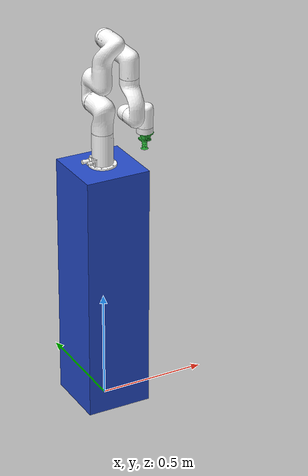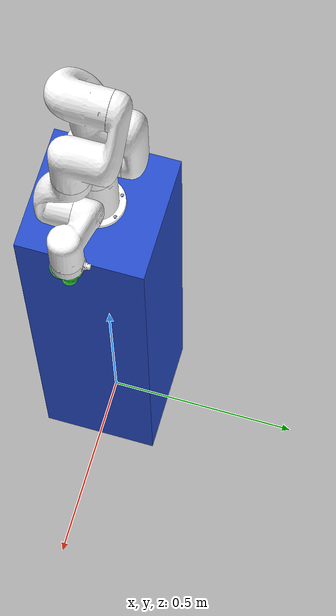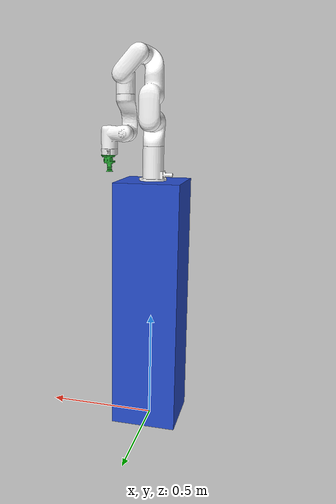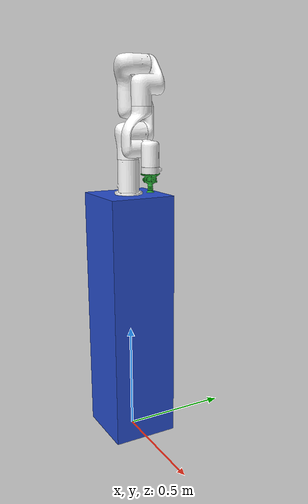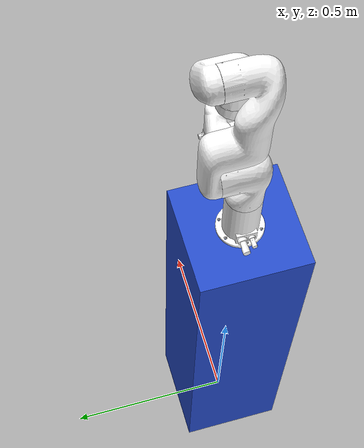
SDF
<sdf version='1.11'>
  <model name='manipuation_environment'>
    <joint name='robot1__pedestal_joint' type='fixed'>
      <pose relative_to='__model__'>0 0 0 0 0 0</pose>
      <parent>world</parent>
      <child>robot1_pedestal_link</child>
    </joint>
    <link name='robot1_pedestal_link'>
      <pose relative_to='robot1__pedestal_joint'>0 0 0 0 0 0</pose>
      <inertial>
        <pose>0 0 0.0066655679331609312 0 0 0</pose>
        <mass>502.69999999999999</mass>
        <inertia>
          <ixx>4.1420336360453547</ixx>
          <ixy>-3.4999999999999999e-06</ixy>
          <ixz>1.2500000000000001e-05</ixz>
          <iyy>4.1420266260453547</iyy>
          <iyz>1.6700000000000001e-06</iyz>
          <izz>0.0032190000000000001</izz>
        </inertia>
      </inertial>
      <collision name='robot1_pedestal_link_collision'>
        <pose>0 0 0.57499999999999996 0 0 0</pose>
        <geometry>
          <box>
            <size>0.29999999999999999 0.29999999999999999 1.1499999999999999</size>
          </box>
        </geometry>
        <surface>
          <contact>
            <ode/>
          </contact>
          <friction>
            <ode/>
          </friction>
        </surface>
      </collision>
      <collision name='robot1_pedestal_link_fixed_joint_lump__link_base_collision_1'>
        <pose>0 0 1.1499999999999999 0 0 0</pose>
        <geometry>
          <mesh>
            <scale>1 1 1</scale>
            <uri>file:///home/student/xarm_ws/install/xarm_description/share/xarm_description/meshes/xarm6/visual/link_base.stl</uri>
          </mesh>
        </geometry>
        <surface>
          <contact>
            <ode/>
          </contact>
          <friction>
            <ode/>
          </friction>
        </surface>
      </collision>
      <visual name='robot1_pedestal_link_visual'>
        <pose>0 0 0.57499999999999996 0 0 0</pose>
        <geometry>
          <box>
            <size>0.29999999999999999 0.29999999999999999 1.1499999999999999</size>
          </box>
        </geometry>
        <material>
          <script>
            <name>Gazebo/Blue</name>
            <uri>file://media/materials/scripts/gazebo.material</uri>
          </script>
          <diffuse>0 0.196078435 0.656862795 1</diffuse>
          <ambient>0 0.196078435 0.656862795 1</ambient>
        </material>
      </visual>
      <visual name='robot1_pedestal_link_fixed_joint_lump__link_base_visual_1'>
        <pose>0 0 1.1499999999999999 0 0 0</pose>
        <geometry>
          <mesh>
            <scale>1 1 1</scale>
            <uri>file:///home/student/xarm_ws/install/xarm_description/share/xarm_description/meshes/xarm6/visual/link_base.stl</uri>
          </mesh>
        </geometry>
        <material>
          <diffuse>1 1 1 1</diffuse>
          <ambient>1 1 1 1</ambient>
        </material>
      </visual>
      <self_collide>true</self_collide>
    </link>
    <joint name='joint1' type='revolute'>
      <pose relative_to='robot1_pedestal_link'>0 0 1.417 0 0 0</pose>
      <parent>robot1_pedestal_link</parent>
      <child>link1</child>
      <axis>
        <xyz>0 0 1</xyz>
        <limit>
          <lower>-6.2831853071795862</lower>
          <upper>6.2831853071795862</upper>
          <effort>50</effort>
          <velocity>3.1400000000000001</velocity>
        </limit>
        <dynamics>
          <damping>1</damping>
          <friction>1</friction>
          <spring_reference>0</spring_reference>
          <spring_stiffness>0</spring_stiffness>
        </dynamics>
      </axis>
    </joint>
    <link name='link1'>
      <pose relative_to='joint1'>0 0 0 0 0 0</pose>
      <inertial>
        <pose>0.00022000000000000001 0.029510000000000002 -0.0124 0 0 0</pose>
        <mass>2.3814000000000002</mass>
        <inertia>
          <ixx>0.0058561999999999998</ixx>
          <ixy>-1.7900000000000001e-05</ixy>
          <ixz>3.5499999999999999e-06</ixz>
          <iyy>0.0050315999999999998</iyy>
          <iyz>-0.00088833599999999999</iyz>
          <izz>0.0035366519999999999</izz>
        </inertia>
      </inertial>
      <collision name='link1_collision'>
        <pose>0 0 0 0 0 0</pose>
        <geometry>
          <mesh>
            <scale>1 1 1</scale>
            <uri>file:///home/student/xarm_ws/install/xarm_description/share/xarm_description/meshes/xarm6/visual/link1.stl</uri>
          </mesh>
        </geometry>
        <surface>
          <contact>
            <ode/>
          </contact>
          <friction>
            <ode/>
          </friction>
        </surface>
      </collision>
      <visual name='link1_visual'>
        <pose>0 0 0 0 0 0</pose>
        <geometry>
          <mesh>
            <scale>1 1 1</scale>
            <uri>file:///home/student/xarm_ws/install/xarm_description/share/xarm_description/meshes/xarm6/visual/link1.stl</uri>
          </mesh>
        </geometry>
        <material>
          <diffuse>1 1 1 1</diffuse>
          <ambient>1 1 1 1</ambient>
        </material>
      </visual>
      <self_collide>true</self_collide>
    </link>
    <joint name='joint2' type='revolute'>
      <pose relative_to='link1'>0 0 0 -1.5708 0 0</pose>
      <parent>link1</parent>
      <child>link2</child>
      <axis>
        <xyz>0 0 1</xyz>
        <limit>
          <lower>-2.0590000000000002</lower>
          <upper>2.0943999999999998</upper>
          <effort>50</effort>
          <velocity>3.1400000000000001</velocity>
        </limit>
        <dynamics>
          <damping>1</damping>
          <friction>1</friction>
          <spring_reference>0</spring_reference>
          <spring_stiffness>0</spring_stiffness>
        </dynamics>
      </axis>
    </joint>
    <link name='link2'>
      <pose relative_to='joint2'>0 0 0 0 0 0</pose>
      <inertial>
        <pose>0.038809999999999997 -0.22783 0.034959999999999998 0 0 0</pose>
        <mass>2.2675000000000001</mass>
        <inertia>
          <ixx>0.028315776000000001</ixx>
          <ixy>0.0050000000000000001</ixy>
          <ixz>0.00066545999999999999</ixz>
          <iyy>0.0057999999999999996</iyy>
          <iyz>-0.0045741000000000002</iyz>
          <izz>0.0273447</izz>
        </inertia>
      </inertial>
      <collision name='link2_collision'>
        <pose>0 0 0 0 0 0</pose>
        <geometry>
          <mesh>
            <scale>1 1 1</scale>
            <uri>file:///home/student/xarm_ws/install/xarm_description/share/xarm_description/meshes/xarm6/visual/link2.stl</uri>
          </mesh>
        </geometry>
        <surface>
          <contact>
            <ode/>
          </contact>
          <friction>
            <ode/>
          </friction>
        </surface>
      </collision>
      <visual name='link2_visual'>
        <pose>0 0 0 0 0 0</pose>
        <geometry>
          <mesh>
            <scale>1 1 1</scale>
            <uri>file:///home/student/xarm_ws/install/xarm_description/share/xarm_description/meshes/xarm6/visual/link2.stl</uri>
          </mesh>
        </geometry>
        <material>
          <diffuse>1 1 1 1</diffuse>
          <ambient>1 1 1 1</ambient>
        </material>
      </visual>
      <self_collide>true</self_collide>
    </link>
    <joint name='joint3' type='revolute'>
      <pose relative_to='link2'>0.053499999999999999 -0.28449999999999998 0 0 0 0</pose>
      <parent>link2</parent>
      <child>link3</child>
      <axis>
        <xyz>0 0 1</xyz>
        <limit>
          <lower>-3.927</lower>
          <upper>0.19198000000000001</upper>
          <effort>32</effort>
          <velocity>3.1400000000000001</velocity>
        </limit>
        <dynamics>
          <damping>1</damping>
          <friction>1</friction>
          <spring_reference>0</spring_reference>
          <spring_stiffness>0</spring_stiffness>
        </dynamics>
      </axis>
    </joint>
    <link name='link3'>
      <pose relative_to='joint3'>0 0 0 0 0 0</pose>
      <inertial>
        <pose>0.07041 0.11631 0.010699999999999999 0 0 0</pose>
        <mass>1.875</mass>
        <inertia>
          <ixx>0.0063483000000000003</ixx>
          <ixy>-0.0015397</ixy>
          <ixz>0.00096858000000000003</ixz>
          <iyy>0.0037975800000000001</iyy>
          <iyz>0.00186567</iyz>
          <izz>0.0059576799999999999</izz>
        </inertia>
      </inertial>
      <collision name='link3_collision'>
        <pose>0 0 0 0 0 0</pose>
        <geometry>
          <mesh>
            <scale>1 1 1</scale>
            <uri>file:///home/student/xarm_ws/install/xarm_description/share/xarm_description/meshes/xarm6/visual/link3.stl</uri>
          </mesh>
        </geometry>
        <surface>
          <contact>
            <ode/>
          </contact>
          <friction>
            <ode/>
          </friction>
        </surface>
      </collision>
      <visual name='link3_visual'>
        <pose>0 0 0 0 0 0</pose>
        <geometry>
          <mesh>
            <scale>1 1 1</scale>
            <uri>file:///home/student/xarm_ws/install/xarm_description/share/xarm_description/meshes/xarm6/visual/link3.stl</uri>
          </mesh>
        </geometry>
        <material>
          <diffuse>1 1 1 1</diffuse>
          <ambient>1 1 1 1</ambient>
        </material>
      </visual>
      <self_collide>true</self_collide>
    </link>
    <joint name='joint4' type='revolute'>
      <pose relative_to='link3'>0.077499999999999999 0.34250000000000003 0 -1.5708 0 0</pose>
      <parent>link3</parent>
      <child>link4</child>
      <axis>
        <xyz>0 0 1</xyz>
        <limit>
          <lower>-6.2831853071795862</lower>
          <upper>6.2831853071795862</upper>
          <effort>32</effort>
          <velocity>3.1400000000000001</velocity>
        </limit>
        <dynamics>
          <damping>1</damping>
          <friction>1</friction>
          <spring_reference>0</spring_reference>
          <spring_stiffness>0</spring_stiffness>
        </dynamics>
      </axis>
    </joint>
    <link name='link4'>
      <pose relative_to='joint4'>0 0 0 0 0 0</pose>
      <inertial>
        <pose>-0.00018000000000000001 0.017979999999999999 -0.02291 0 0 0</pose>
        <mass>1.3191999999999999</mass>
        <inertia>
          <ixx>0.0048960000000000002</ixx>
          <ixy>-6.9249999999999998e-06</ixy>
          <ixz>-1.418e-05</ixz>
          <iyy>0.0044569400000000004</iyy>
          <iyz>-0.00023185999999999999</iyz>
          <izz>0.0013433200000000001</izz>
        </inertia>
      </inertial>
      <collision name='link4_collision'>
        <pose>0 0 0 0 0 0</pose>
        <geometry>
          <mesh>
            <scale>1 1 1</scale>
            <uri>file:///home/student/xarm_ws/install/xarm_description/share/xarm_description/meshes/xarm6/visual/link4.stl</uri>
          </mesh>
        </geometry>
        <surface>
          <contact>
            <ode/>
          </contact>
          <friction>
            <ode/>
          </friction>
        </surface>
      </collision>
      <visual name='link4_visual'>
        <pose>0 0 0 0 0 0</pose>
        <geometry>
          <mesh>
            <scale>1 1 1</scale>
            <uri>file:///home/student/xarm_ws/install/xarm_description/share/xarm_description/meshes/xarm6/visual/link4.stl</uri>
          </mesh>
        </geometry>
        <material>
          <diffuse>1 1 1 1</diffuse>
          <ambient>1 1 1 1</ambient>
        </material>
      </visual>
      <self_collide>true</self_collide>
    </link>
    <joint name='joint5' type='revolute'>
      <pose relative_to='link4'>0 0 0 1.5708 0 0</pose>
      <parent>link4</parent>
      <child>link5</child>
      <axis>
        <xyz>0 0 1</xyz>
        <limit>
          <lower>-1.6929700000000001</lower>
          <upper>3.1415926535897931</upper>
          <effort>32</effort>
          <velocity>3.1400000000000001</velocity>
        </limit>
        <dynamics>
          <damping>1</damping>
          <friction>1</friction>
          <spring_reference>0</spring_reference>
          <spring_stiffness>0</spring_stiffness>
        </dynamics>
      </axis>
    </joint>
    <link name='link5'>
      <pose relative_to='joint5'>0 0 0 0 0 0</pose>
      <inertial>
        <pose>0.065100000000000005 0.030960000000000001 0.00315 0 0 0</pose>
        <mass>1.3385400000000001</mass>
        <inertia>
          <ixx>0.00146378</ixx>
          <ixy>-0.000450624</ixy>
          <ixz>0.00028430600000000001</ixz>
          <iyy>0.0018419199999999999</iyy>
          <iyz>0.00013086599999999999</iyz>
          <izz>0.002333524</izz>
        </inertia>
      </inertial>
      <collision name='link5_collision'>
        <pose>0 0 0 0 0 0</pose>
        <geometry>
          <mesh>
            <scale>1 1 1</scale>
            <uri>file:///home/student/xarm_ws/install/xarm_description/share/xarm_description/meshes/xarm6/visual/link5.stl</uri>
          </mesh>
        </geometry>
        <surface>
          <contact>
            <ode/>
          </contact>
          <friction>
            <ode/>
          </friction>
        </surface>
      </collision>
      <visual name='link5_visual'>
        <pose>0 0 0 0 0 0</pose>
        <geometry>
          <mesh>
            <scale>1 1 1</scale>
            <uri>file:///home/student/xarm_ws/install/xarm_description/share/xarm_description/meshes/xarm6/visual/link5.stl</uri>
          </mesh>
        </geometry>
        <material>
          <diffuse>1 1 1 1</diffuse>
          <ambient>1 1 1 1</ambient>
        </material>
      </visual>
      <self_collide>true</self_collide>
    </link>
    <joint name='joint6' type='revolute'>
      <pose relative_to='link5'>0.075999999999999998 0.097000000000000003 0 -1.5708 0 0</pose>
      <parent>link5</parent>
      <child>link6</child>
      <axis>
        <xyz>0 0 1</xyz>
        <limit>
          <lower>-6.2831853071795862</lower>
          <upper>6.2831853071795862</upper>
          <effort>20</effort>
          <velocity>3.1400000000000001</velocity>
        </limit>
        <dynamics>
          <damping>1</damping>
          <friction>1</friction>
          <spring_reference>0</spring_reference>
          <spring_stiffness>0</spring_stiffness>
        </dynamics>
      </axis>
    </joint>
    <link name='link6'>
      <pose relative_to='joint6'>0 0 0 0 0 0</pose>
      <inertial>
        <pose>0 -0.0063938888888888882 -0.010370000000000001 0 0 0</pose>
        <mass>0.17999999999999999</mass>
        <inertia>
          <ixx>0.0001008714922777778</ixx>
          <ixy>0</ixy>
          <ixz>0</ixz>
          <iyy>6.6138626000000002e-05</iyy>
          <iyz>-4.3020490000000012e-06</iyz>
          <izz>0.0001574328662777778</izz>
        </inertia>
      </inertial>
      <collision name='link6_collision'>
        <pose>0 0 0 0 0 0</pose>
        <geometry>
          <mesh>
            <scale>1 1 1</scale>
            <uri>file:///home/student/xarm_ws/install/xarm_description/share/xarm_description/meshes/end_tool/collision/end_tool.stl</uri>
          </mesh>
        </geometry>
        <surface>
          <contact>
            <ode/>
          </contact>
          <friction>
            <ode/>
          </friction>
        </surface>
      </collision>
      <collision name='link6_fixed_joint_lump__vacuum_gripper1_base_link_collision_collision_1'>
        <pose>0 0 0 0 0 0</pose>
        <geometry>
          <mesh>
            <scale>1 1 1</scale>
            <uri>file:///home/student/ros2_industrial_ws/install/ros_industrial_support/share/ros_industrial_support/meshes/vacuum_gripper/collision/vacuum_gripper.dae</uri>
          </mesh>
        </geometry>
        <surface>
          <contact>
            <ode/>
          </contact>
          <friction>
            <ode/>
          </friction>
        </surface>
      </collision>
      <visual name='link6_visual'>
        <pose>0 0 0 0 0 0</pose>
        <geometry>
          <mesh>
            <scale>1 1 1</scale>
            <uri>file:///home/student/xarm_ws/install/xarm_description/share/xarm_description/meshes/xarm6/visual/link6.stl</uri>
          </mesh>
        </geometry>
        <material>
          <diffuse>0.941250026 0.941250026 0.941250026 1</diffuse>
          <ambient>0.941250026 0.941250026 0.941250026 1</ambient>
        </material>
      </visual>
      <visual name='link6_fixed_joint_lump__vacuum_gripper1_base_link_visual_1'>
        <pose>0 0 0 0 0 0</pose>
        <geometry>
          <mesh>
            <scale>1 1 1</scale>
            <uri>file:///home/student/ros2_industrial_ws/install/ros_industrial_support/share/ros_industrial_support/meshes/vacuum_gripper/visual/vacuum_gripper.dae</uri>
          </mesh>
        </geometry>
        <material>
          <script>
            <name>Gazebo/Green</name>
            <uri>file://media/materials/scripts/gazebo.material</uri>
          </script>
          <diffuse>1 0 0 1</diffuse>
          <ambient>1 0 0 1</ambient>
        </material>
      </visual>
      <self_collide>true</self_collide>
      <sensor name='bumper' type='contact'>
        <update_rate>10</update_rate>
        <contact>
          <collision>vacuum_gripper1__gripper_collision_collision</collision>
          <topic>__default_topic__</topic>
        </contact>
        <pose>0 0 0.080000000000000002 0 0 0</pose>
      </sensor>
    </link>
    <plugin name='gz_ros2_control::GazeboSimROS2ControlPlugin' filename='gz_ros2_control-system'>
      <parameters>/home/student/xarm_ws/install/xarm_controller/share/xarm_controller/config/xarm6_controllers.yaml</parameters>
    </plugin>
    <frame name='world_joint' attached_to='base_link'>
      <pose>0 0 0 0 0 0</pose>
    </frame>
    <frame name='link_base' attached_to='world_joint'>
      <pose>0 0 0 0 0 0</pose>
    </frame>
    <frame name='vacuum_gripper1_joint' attached_to='vacuum_gripper1_base_link'>
      <pose>0 0 0.080000000000000002 0 0 0</pose>
    </frame>
    <frame name='vacuum_gripper1_suction_cup' attached_to='vacuum_gripper1_joint'>
      <pose>0 0 0 0 0 0</pose>
    </frame>
    <frame name='gripper1_to_robot1' attached_to='tool_link'>
      <pose>0 0 0 0 0 0</pose>
    </frame>
    <frame name='vacuum_gripper1_base_link' attached_to='gripper1_to_robot1'>
      <pose>0 0 0 0 0 0</pose>
    </frame>
    <frame name='eff_to_tool' attached_to='link_eef'>
      <pose>0 0 0 0 0 0</pose>
    </frame>
    <frame name='tool_link' attached_to='eff_to_tool'>
      <pose>0 0 0 0 0 0</pose>
    </frame>
    <frame name='joint_eef' attached_to='link6'>
      <pose>0 0 0 0 0 0</pose>
    </frame>
    <frame name='link_eef' attached_to='joint_eef'>
      <pose>0 0 0 0 0 0</pose>
    </frame>
    <frame name='robot1_to_pedestal' attached_to='robot1_pedestal_link'>
      <pose>0 0 1.1499999999999999 0 0 0</pose>
    </frame>
    <frame name='base_link' attached_to='robot1_to_pedestal'>
      <pose>0 0 0 0 0 0</pose>
    </frame>
  </model>
</sdf>
